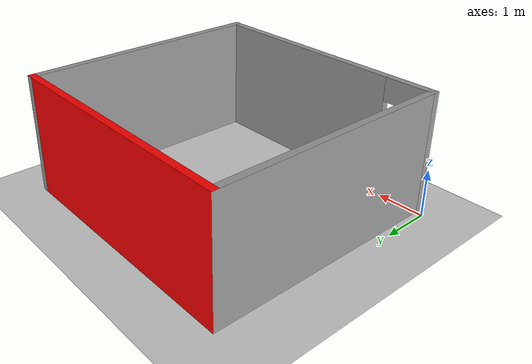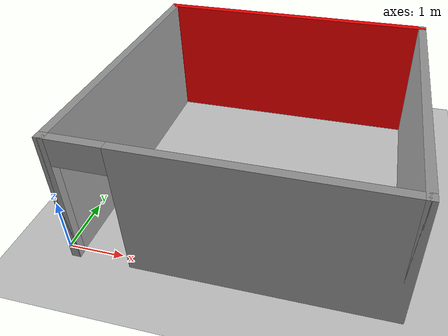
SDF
<sdf version="1.6">
 <world name="default">
  <light name="sun" type="directional">
   <pose>0 0 10 0 -0 0</pose>
   <diffuse>0.8 0.8 0.8 1</diffuse>
   <specular>0.2 0.2 0.2 1</specular>
   <attenuation>
    <range>1000</range>
    <constant>0.9</constant>
    <linear>0.01</linear>
    <quadratic>0.001</quadratic>
   </attenuation>
   <direction>-0.5 0.1 -0.9</direction>
  </light>
  <model name="ground_plane">
   <static>1</static>
   <link name="link">
    <collision name="collision">
     <geometry><plane><normal>0 0 1</normal><size>100 100</size></plane></geometry>
     <surface>
      <contact><collide_bitmask>65535</collide_bitmask></contact>
      <friction><ode><mu>100</mu><mu2>50</mu2></ode></friction>
     </surface>
    </collision>
    <visual name="visual">
     <cast_shadows>0</cast_shadows>
     <geometry><plane><normal>0 0 1</normal><size>100 100</size></plane></geometry>
     <material>
      <script><uri>file://media/materials/scripts/gazebo.material</uri><name>Gazebo/Grey</name></script>
     </material>
    </visual>
   </link>
  </model>
  <gravity>0 0 -9.8</gravity>
  <magnetic_field>6e-06 2.3e-05 -4.2e-05</magnetic_field>
  <atmosphere type="adiabatic"/>
  <physics name="default_physics" default="0" type="ode">
   <max_step_size>0.001</max_step_size>
   <real_time_factor>1</real_time_factor>
   <real_time_update_rate>1000</real_time_update_rate>
  </physics>
  <scene><ambient>0.4 0.4 0.4 1</ambient><background>0.7 0.7 0.7 1</background><shadows>1</shadows></scene>
  <audio><device>default</device></audio>
  <spherical_coordinates>
   <surface_model>EARTH_WGS84</surface_model>
   <latitude_deg>0</latitude_deg>
   <longitude_deg>0</longitude_deg>
   <elevation>0</elevation>
   <heading_deg>0</heading_deg>
  </spherical_coordinates>
  <model name="red.world">
   <pose>2.897 2.43795 0 0 -0 0</pose>
   <link name="Wall_10">
    <collision name="Wall_10_Collision">
     <geometry><box><size>5.25 0.15 2.5</size></box></geometry>
     <pose>0 0 1.25 0 -0 0</pose>
    </collision>
    <visual name="Wall_10_Visual">
     <pose>0 0 1.25 0 -0 0</pose>
     <geometry><box><size>5.25 0.15 2.5</size></box></geometry>
     <material>
      <script><uri>file://media/materials/scripts/gazebo.material</uri><name>Gazebo/Grey</name></script>
      <ambient>1 1 1 1</ambient>
     </material>
     <meta><layer>0</layer></meta>
    </visual>
    <pose>-2.675 0 0 0 -0 1.5708</pose>
   </link>
   <link name="Wall_12">
    <collision name="Wall_12_Collision">
     <geometry><box><size>5.25 0.15 2.5</size></box></geometry>
     <pose>0 0 1.25 0 -0 0</pose>
    </collision>
    <visual name="Wall_12_Visual">
     <pose>0 0 1.25 0 -0 0</pose>
     <geometry><box><size>5.25 0.15 2.5</size></box></geometry>
     <material>
      <script><uri>file://media/materials/scripts/gazebo.material</uri><name>Gazebo/Grey</name></script>
      <ambient>1 1 1 1</ambient>
     </material>
     <meta><layer>0</layer></meta>
    </visual>
    <pose>2.675 0 0 0 -0 1.5708</pose>
   </link>
   <link name="Wall_13">
    <collision name="Wall_13_Collision">
     <geometry><box><size>5.5 0.15 2.5</size></box></geometry>
     <pose>0 0 1.25 0 -0 0</pose>
    </collision>
    <visual name="Wall_13_Visual">
     <pose>0 0 1.25 0 -0 0</pose>
     <geometry><box><size>5.5 0.15 2.5</size></box></geometry>
     <material>
      <script><uri>file://media/materials/scripts/gazebo.material</uri><name>Gazebo/Grey</name></script>
      <ambient>1 0 0 1</ambient>
     </material>
     <meta><layer>0</layer></meta>
    </visual>
    <pose>0 2.55 0 0 -0 3.14159</pose>
   </link>
   <link name="Wall_7">
    <pose>0 -2.55 0 0 -0 0</pose>
    <visual name="Wall_7_Visual_0">
     <pose>-2.66855 0 1.25 0 -0 0</pose>
     <geometry><box><size>0.162898 0.15 2.5</size></box></geometry>
     <material>
      <script><uri>file://media/materials/scripts/gazebo.material</uri><name>Gazebo/Grey</name></script>
      <ambient>1 1 1 1</ambient>
     </material>
     <meta><layer>0</layer></meta>
    </visual>
    <collision name="Wall_7_Collision_0">
     <geometry><box><size>0.162898 0.15 2.5</size></box></geometry>
     <pose>-2.66855 0 1.25 0 -0 0</pose>
    </collision>
    <visual name="Wall_7_Visual_1">
     <pose>0.531449 0 1.25 0 -0 0</pose>
     <geometry><box><size>4.4371 0.15 2.5</size></box></geometry>
     <material>
      <script><uri>file://media/materials/scripts/gazebo.material</uri><name>Gazebo/Grey</name></script>
      <ambient>1 1 1 1</ambient>
     </material>
     <meta><layer>0</layer></meta>
    </visual>
    <collision name="Wall_7_Collision_1">
     <geometry><box><size>4.4371 0.15 2.5</size></box></geometry>
     <pose>0.531449 0 1.25 0 -0 0</pose>
    </collision>
    <visual name="Wall_7_Visual_2">
     <pose>-2.1371 0 2.25 0 -0 0</pose>
     <geometry><box><size>0.9 0.15 0.5</size></box></geometry>
     <material>
      <script><uri>file://media/materials/scripts/gazebo.material</uri><name>Gazebo/Grey</name></script>
      <ambient>1 1 1 1</ambient>
     </material>
     <meta><layer>0</layer></meta>
    </visual>
    <collision name="Wall_7_Collision_2">
     <geometry><box><size>0.9 0.15 0.5</size></box></geometry>
     <pose>-2.1371 0 2.25 0 -0 0</pose>
    </collision>
   </link>
   <static>1</static>
  </model>
 </world>
</sdf>
